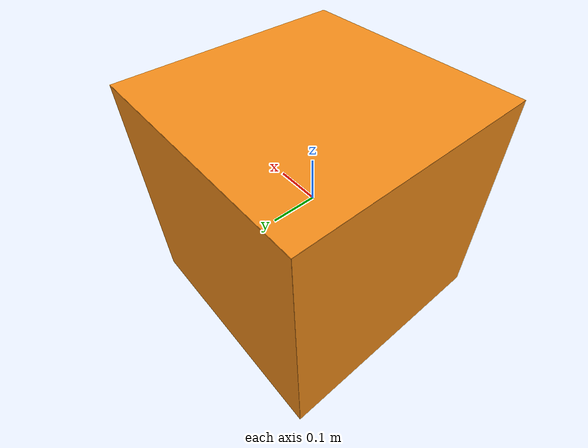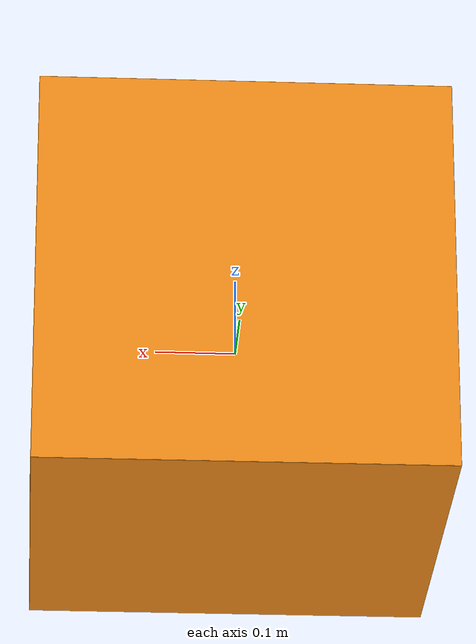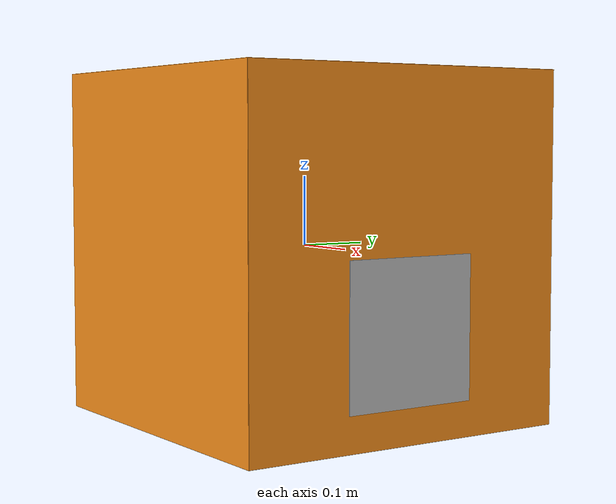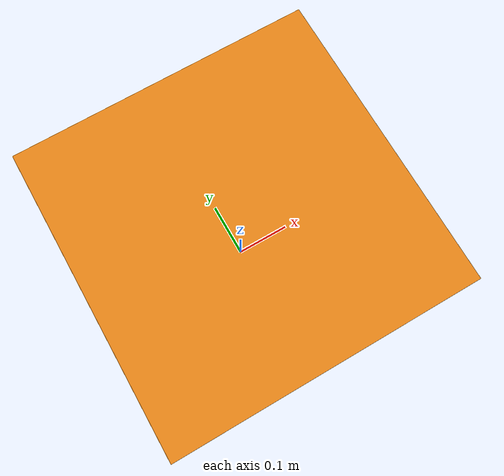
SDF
<?xml version="1.0" ?>
<sdf version="1.6">
  <model name="tagged_orange_box">
    <static>false</static>   <!-- Jetzt dynamisch -->
    <link name="link">

      <!-- Inertial -->
      <inertial>
        <mass>1.0</mass>
        <inertia>
          <ixx>0.166</ixx>
          <iyy>0.166</iyy>
          <izz>0.166</izz>
          <ixy>0</ixy>
          <ixz>0</ixz>
          <iyz>0</iyz>
        </inertia>
      </inertial>

      <!-- Build the visual representation from 6 faces to assign materials -->

      <!-- Top face (orange) -->
      <visual name="top_visual">
        <pose>0 0 0.25 0 0 0</pose>
        <geometry>
          <box>
            <size>0.5 0.5 0.001</size>
          </box>
        </geometry>
        <material>
          <script>
            <uri>model://tagged_orange_box/materials/scripts</uri>
            <uri>model://tagged_orange_box/materials/textures</uri>
            <name>TaggedOrangeBox/Materials/OrangeSide</name>
          </script>
        </material>
      </visual>

      <!-- Bottom face (orange) -->
      <visual name="bottom_visual">
        <pose>0 0 -0.25 0 0 0</pose>
        <geometry>
          <box>
            <size>0.5 0.5 0.001</size>
          </box>
        </geometry>
        <material>
          <script>
            <uri>model://tagged_orange_box/materials/scripts</uri>
            <uri>model://tagged_orange_box/materials/textures</uri>
            <name>TaggedOrangeBox/Materials/OrangeSide</name>
          </script>
        </material>
      </visual>

      <!-- Front face (orange) -->
      <visual name="front_visual">
        <pose>0.25 0 0 0 0 0</pose>
        <geometry>
          <box>
            <size>0.001 0.5 0.5</size>
          </box>
        </geometry>
        <material>
          <script>
            <uri>model://tagged_orange_box/materials/scripts</uri>
            <uri>model://tagged_orange_box/materials/textures</uri>
            <name>TaggedOrangeBox/Materials/OrangeSide</name>
          </script>
        </material>
      </visual>

      <!-- Back face (orange) -->
      <visual name="back_visual">
        <pose>-0.25 0 0 0 0 0</pose>
        <geometry>
          <box>
            <size>0.001 0.5 0.5</size>
          </box>
        </geometry>
        <material>
          <script>
            <uri>model://tagged_orange_box/materials/scripts</uri>
            <uri>model://tagged_orange_box/materials/textures</uri>
            <name>TaggedOrangeBox/Materials/OrangeSide</name>
          </script>
        </material>
      </visual>

      <!-- Right face (orange) -->
      <visual name="right_visual">
        <pose>0 0.25 0 0 0 0</pose>
        <geometry>
          <box>
            <size>0.5 0.001 0.5</size>
          </box>
        </geometry>
        <material>
          <script>
            <uri>model://tagged_orange_box/materials/scripts</uri>
            <uri>model://tagged_orange_box/materials/textures</uri>
            <name>TaggedOrangeBox/Materials/OrangeSide</name>
          </script>
        </material>
      </visual>

      <!-- Left face (orange) -->
      <visual name="left_visual">
        <pose>0 -0.25 0 0 0 0</pose>
        <geometry>
          <box>
            <size>0.5 0.001 0.5</size>
          </box>
        </geometry>
        <material>
          <script>
            <uri>model://tagged_orange_box/materials/scripts</uri>
            <uri>model://tagged_orange_box/materials/textures</uri>
            <name>TaggedOrangeBox/Materials/OrangeSide</name>
          </script>
        </material>
      </visual>

      <!-- AprilTag Plate on the side -->
      <visual name="apritag_plate_visual">
        <pose>0.251 0 -0.1 0 0 0</pose> <!-- On the front face (+X) with a slight offset -->
        <geometry>
          <box>
            <size>0.001 0.2 0.2</size> <!-- 200x200mm plate, 1mm thick -->
          </box>
        </geometry>
        <material>
          <script>
            <uri>model://tagged_orange_box/materials/scripts</uri>
            <uri>model://tagged_orange_box/materials/textures</uri>
            <name>TaggedOrangeBox/Materials/AprilTagSide</name>
          </script>
        </material>
      </visual>

      <!-- Collision -->
      <collision name="collision">
        <geometry>
          <!-- Use a simple box for collision, not a complex mesh -->
          <box>
            <size>0.5 0.5 0.5</size> <!-- Assuming the box is 0.5m x 0.5m x 0.5m -->
          </box>
        </geometry>
      </collision>

    </link>
  </model>
</sdf>
